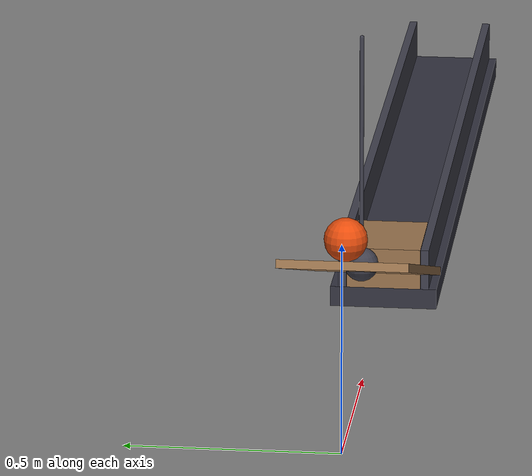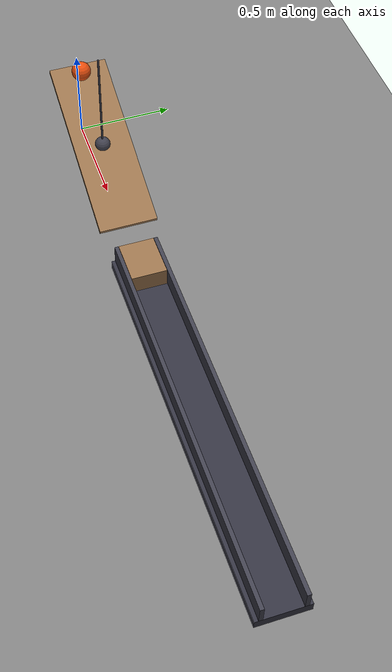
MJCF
<mujoco model="pendulum_ramp_and_sliding_cart">
  <compiler angle="radian"/>
  <option timestep="0.002"/>
  <worldbody>
    <geom name="floor" type="plane" size="8 8 0.1" friction="0.68 0 0"/>
    <body name="ramp1">
      <geom name="ramp1" type="box" pos="0.449121 0 0.29519" size="0.475 0.15 0.01" euler="0 0.331613 0" friction="0.68 0 0" solref="0.01 1" rgba="0.6 0.45 0.3 1"/>
    </body>
    <body name="ball1" pos="0.0857204 0 0.483776">
      <freejoint/>
      <geom name="ball1" type="sphere" pos="0 0 0" size="0.05" mass="0.2" condim="6" friction="0.68 0 0" solref="0.01 1" rgba="0.9 0.3 0.05 1"/>
    </body>
    <body name="pendulum1" pos="0.456254 0 0.851243">
      <joint name="pendulum_hinge" type="hinge" pos="0 0 0" axis="0 1 0" damping="0.04"/>
      <geom name="pendulum1" type="sphere" pos="0 0 -0.55" size="0.04" mass="0.36" friction="0.68 0 0" solref="0.01 1" rgba="0.25 0.25 0.3 1"/>
      <geom name="pendulum rod" type="capsule" size="0.005" fromto="0 0 0 0 0 -0.51" mass="0.04" friction="0.68 0 0" solref="0.01 1" rgba="0.25 0.25 0.3 1"/>
    </body>
    <body name="cart track">
      <geom name="cart track" type="box" pos="2.0215 0 0.025" size="1 0.13 0.025" friction="0.68 0 0" solref="0.01 1" rgba="0.2 0.2 0.25 1"/>
    </body>
    <body name="left cart guide">
      <geom name="left cart guide" type="box" pos="2.0215 0.101 0.1" size="1 0.01 0.05" friction="0.68 0 0" solref="0.01 1" rgba="0.25 0.25 0.3 1"/>
    </body>
    <body name="right cart guide">
      <geom name="right cart guide" type="box" pos="2.0215 -0.101 0.1" size="1 0.01 0.05" friction="0.68 0 0" solref="0.01 1" rgba="0.25 0.25 0.3 1"/>
    </body>
    <body name="cart1" pos="1.1315 0 0.1">
      <freejoint/>
      <geom name="cart1" type="box" pos="0 0 0" size="0.11 0.09 0.05" mass="0.5" friction="0.68 0 0" solref="0.01 1" rgba="0.6 0.45 0.3 1"/>
    </body>
  </worldbody>
  <keyframe>
    <key name="start" qpos="0.0857204 0 0.483776 1 0 0 0 0.959931 1.1315 0 0.1 1 0 0 0" qvel="0 0 0 0 0 0 0 0 0 0 0 0 0"/>
  </keyframe>
</mujoco>
